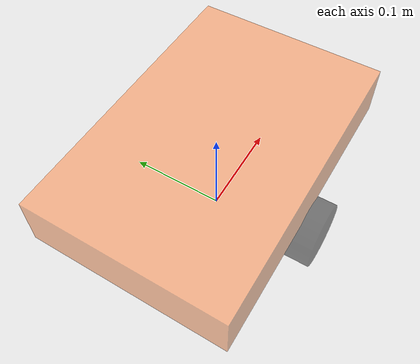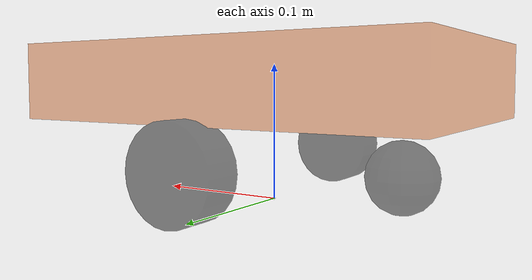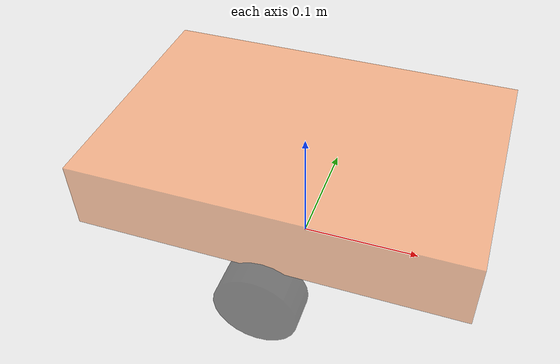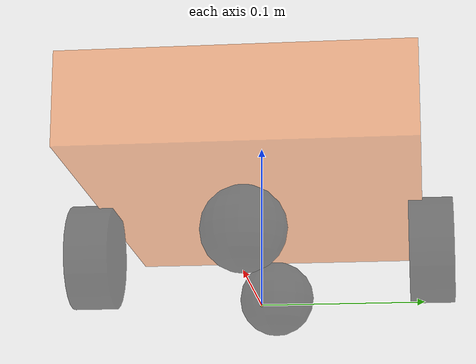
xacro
<robot name="pf1s1" xmlns:xacro="http://www.ros.org/wiki/xacro">
    <xacro:property name="PI" value="3.1415926"/>

    <!-- Base -->
    <xacro:property name="base_footprint_radius" value="0.001" />
    <xacro:property name="base_link_width" value="0.20" />
    <xacro:property name="base_link_length" value="0.30" />
    <xacro:property name="base_link_height" value="0.055" />
    <xacro:property name="earth_space" value="0.06" /> <!-- Ground clearance -->

    <link name="base_footprint">
    <visual>
        <geometry>
            <sphere radius="${base_footprint_radius}" />
        </geometry>
    </visual>
    </link>

    <link name="base_link">
    <visual>
        <geometry>
            <box size="${base_link_length} ${base_link_width} ${base_link_height}" />
        </geometry>
        <origin xyz="0 0 0" rpy="0 0 0" />
        <material name="baselink_color">
            <color rgba="1.0 0.5 0.2 0.5" />
        </material>
    </visual>
    </link>

    <joint name="link2footprint" type="fixed">
        <parent link="base_footprint" />
        <child link="base_link" />
        <origin xyz="0 0 ${earth_space + base_link_height / 2 }" />
    </joint>

    <!-- Power Wheel -->
    <xacro:property name="wheel_radius" value="0.0325" />
    <xacro:property name="wheel_width" value="0.027" />
    <xacro:property name="wheel_offset_y" value="0.005" />
    <xacro:property name="wheel_offset_z" value="${wheel_radius * 2 - earth_space}" />
    <xacro:property name="wheel_joint_y" value="${base_link_width / 2 + wheel_offset_y}" />
    <xacro:property name="wheel_joint_z" value="${(earth_space - wheel_offset_z) * -1}" />

    <xacro:macro name="add_wheels" params="name flag">
    <link name="${name}_wheel">
        <visual>
        <geometry>
            <cylinder radius="${wheel_radius}" length="${wheel_width}" />
        </geometry>
        <origin xyz="0.0 0.0 0.0" rpy="${PI / 2} 0.0 0.0" />
        <material name="black">
            <color rgba="0 0 0 0.5" />
        </material>
        </visual>
    </link>

    <joint name="${name}_wheel2link" type="continuous">
        <parent link="base_link" />
        <child link="${name}_wheel" />
        <origin xyz="0 ${wheel_joint_y * flag} ${wheel_joint_z}" rpy="0 0 0" />
        <axis xyz="0 1 0" />
    </joint>

    </xacro:macro>

    <xacro:add_wheels name="left" flag="1" />
    <xacro:add_wheels name="right" flag="-1" />

    <!-- Support Wheel -->
    <xacro:property name="support_wheel_radius" value="0.025" />
    <xacro:property name="support_offset_x" value="0.05" />
    <xacro:property name="support_offset_z" value="0.0035" />  <!-- Just feel it and keep the support wheels on the ground -->
    <xacro:property name="support_joint_x" value="${base_link_length / 2 - support_offset_x}" />
    <xacro:property name="support_joint_z" value="${(earth_space + support_offset_z) * -1}" />

    <xacro:macro name="add_support_wheel" params="name flag" >
    <link name="${name}_wheel">
        <visual>
            <geometry>
                <sphere radius="${support_wheel_radius}" />
            </geometry>
            <origin xyz="0 0 0" rpy="0 0 0" />
            <material name="black">
                <color rgba="0 0 0 0.5" />
            </material>
        </visual>
    </link>

    <joint name="${name}_wheel2base_link" type="continuous">
        <parent link="base_link" />
        <child link="${name}_wheel" />
        <origin xyz="${support_joint_x * flag} 0 ${support_joint_z}" rpy="0 0 0" />
        <axis xyz="0 1 0" />
    </joint>
    </xacro:macro>

    <xacro:add_support_wheel name="front" flag="1" />
    <xacro:add_support_wheel name="back" flag="-1" />

</robot>
